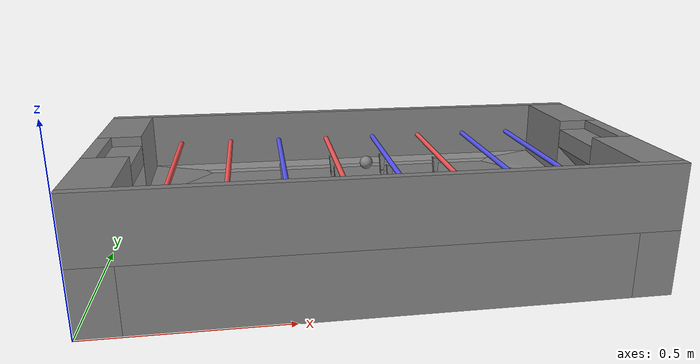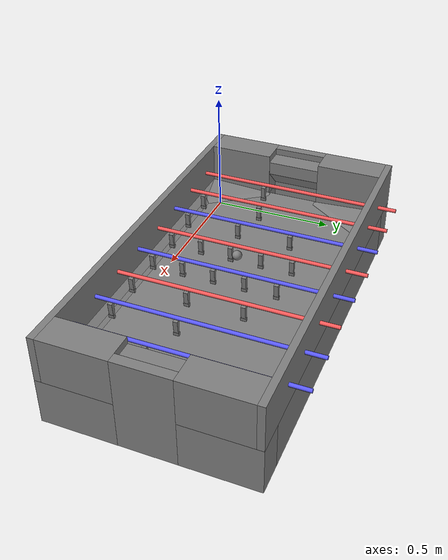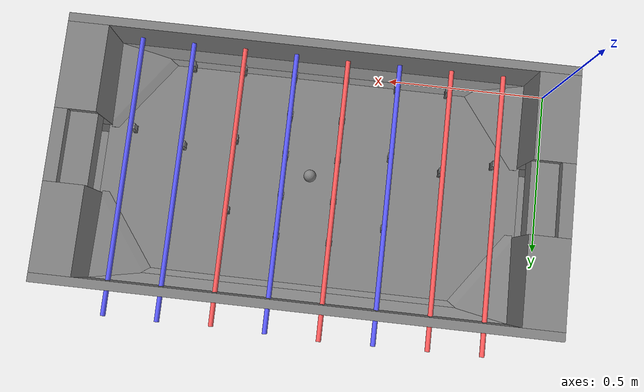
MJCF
<mujoco model="FuzbAI Simulation">
    <asset>
        <material name="rod_red" rgba="1 0.35 0.35 1"/>
        <material name="rod_blue" rgba="0.35 0.35 1 1"/>
        <mesh file="wedge_bottom1.stl" scale="0.001 0.001 0.001"/>
        <mesh file="wedge_bottom2.stl" scale="0.001 0.001 0.001"/>
        <mesh file="wedge_upper1.stl" scale="0.001 0.001 0.001"/>
        <mesh file="wedge_upper2.stl" scale="0.001 0.001 0.001"/>
        <mesh file="ld_bump.stl" scale="0.001 0.001 0.001"/>
        <mesh file="rd_bump.stl" scale="0.001 0.001 0.001"/>
        <mesh file="lu_bump.stl" scale="0.001 0.001 0.001"/>
        <mesh file="ru_bump.stl" scale="0.001 0.001 0.001"/>
        <mesh file="igralec_zgoraj.stl" scale="0.001 0.001 0.001"/>
        <mesh file="igralec_spodaj.stl" scale="0.001 0.001 0.001"/>
    </asset>

    <visual>
        <scale framelength="0.2" framewidth="0.01" actuatorwidth="0.02" jointwidth="0.01"/>

        <!-- OpenGL buffer size (4K UHD, 16:9) -->
        <global offwidth="3840" offheight="2160"/>
    </visual>

    <option integrator="implicitfast" cone="elliptic"/>

    <!-- Override memory for contacts to reduce space -->
    <size memory="1M"/>

    <!-- Default classes for repeated geoms -->
    <default>
        <default class="rod_geom">
            <geom type="cylinder" size="0.007 0.40" pos="0 0.40 0" mass="0.9667308913626517" euler="90 0 0" contype="0" conaffinity="0"/>
        </default>
        <default class="player_upper">
            <geom type="mesh" mesh="igralec_zgoraj" mass="0.139539" solref="0.004 1" friction="0.5 0 0"/>
        </default>
        <default class="player_lower">
            <geom type="mesh" mesh="igralec_spodaj" mass="0.06976927" solref="0.004 1" friction="0.5 0 0"/>
        </default>
    </default>

    <!-- Aktuatorji palic -->
    <actuator>
        <motor name="p1_slide_ctrl" joint="p1_slide"/>  <!-- Goalkeeper R -->
        <motor name="p2_slide_ctrl" joint="p2_slide"/> <!-- Defense R -->
        <motor name="p3_slide_ctrl" joint="p3_slide"/>  <!-- Attack B -->
        <motor name="p4_slide_ctrl" joint="p4_slide"/> <!-- Offense R -->
        <motor name="p5_slide_ctrl" joint="p5_slide"/> <!-- Offense B -->
        <motor name="p6_slide_ctrl" joint="p6_slide"/>  <!-- Attack R -->
        <motor name="p7_slide_ctrl" joint="p7_slide"/> <!-- Defense B -->
        <motor name="p8_slide_ctrl" joint="p8_slide"/>  <!-- Goalkeeper B -->
        <motor name="p1_revolute_ctrl" joint="p1_revolute"/> <!-- Goalkeeper R -->
        <motor name="p2_revolute_ctrl" joint="p2_revolute"/> <!-- Defense R -->
        <motor name="p3_revolute_ctrl" joint="p3_revolute"/> <!-- Attack B -->
        <motor name="p4_revolute_ctrl" joint="p4_revolute"/> <!-- Offense R -->
        <motor name="p5_revolute_ctrl" joint="p5_revolute"/> <!-- Offense B -->
        <motor name="p6_revolute_ctrl" joint="p6_revolute"/> <!-- Attack R -->
        <motor name="p7_revolute_ctrl" joint="p7_revolute"/> <!-- Defense B -->
        <motor name="p8_revolute_ctrl" joint="p8_revolute"/> <!-- Goalkeeper  -->

        <!-- Dušenje žogice za namene raznolikosti žogic med epizodami -->
        <damper name="ball_damp_x" kv="0.05" joint="ball" ctrlrange="0 0.3" gear="1 0 0 0 0 0"/>
        <damper name="ball_damp_y" kv="0.05" joint="ball" ctrlrange="0 0.3" gear="0 1 0 0 0 0"/>
    </actuator>

    <!-- Izklop stikov med mizo in palicam -->
    <contact>
        <exclude body1="miza" body2="rod1"/>
        <exclude body1="miza" body2="rod2"/>
        <exclude body1="miza" body2="rod3"/>
        <exclude body1="miza" body2="rod4"/>
        <exclude body1="miza" body2="rod5"/>
        <exclude body1="miza" body2="rod6"/>
        <exclude body1="miza" body2="rod7"/>
        <exclude body1="miza" body2="rod8"/>
    </contact>

    <worldbody>
        <!-- Red goalkeeper's camera - demonstrational purposes -->
        <camera name="cam_red_g" pos="0.387 0.398 0.190" xyaxes="-0.023 1.000 0.000 0 0 0.996"/>

        <!-- Top closeup camera - demonstrational purposes -->
        <camera name="cam_top_closeup" pos="0.720 0.358 1.228" xyaxes="1.000 0.0 0.000 0.0 1.000 0.017"/>

        <!-- Blue front camera - demonstrational purposes -->
        <camera name="cam_blue_front" pos="1.5 0.376 0.911" xyaxes="0.000 1.000 0.000 -1.5 0.000 1"/>

        <!-- Blue side-front camera - demonstrational purposes of attacker -->
        <camera name="cam_blue_side_front" pos="1.341 0.701 0.584" xyaxes="-0.793 0.609 0.000 -0.430 -0.561 0.707"/>

        <!-- red side-front camera - demonstrational purposes of goalkeeper and defense -->
        <camera name="cam_red_side_front" pos="0.604 0.892 0.682" xyaxes="-0.996 0.087 -0.000 -0.064 -0.734 0.676"/>

        <!-- Top camera - competition visualization -->
        <camera name="cam_top" pos="0.713 -0.056 2.043" xyaxes="1.000 0 0.000 0.000 1.000 0.225"/>

        <!-- Vizualizacija koordinatnih sistemov -->
        <site name="frame_red" pos="0.115 0.727 0.174" euler="180 0 0"/>
        <site name="frame_blue" pos="1.322 0.025 0.174" euler="180 0 180"/>

        <!-- Miza -->
        <body name="miza" pos="0 0 0.174">
            <!-- Glavna podlaga -->
            <geom type="box" size="0.6115 0.376 0.087" pos="0.7185 0.376 -0.087" solref="0.004 1" friction="0 0 0"/>

            <!-- Goal levo-spodaj -->
            <geom type="box" size="0.0535 0.13675 0.087" pos="0.0535 0.13675 -0.087" solref="0.004 1"/>
            <geom type="box" size="0.0577415 0.12425 0.0855" pos="0.057752500000000005 0.14925 0.0855" friction="0 0 0" solref="0.02 0.25"/>

            <!-- Goal levo-zgoraj -->
            <geom type="box" size="0.0535 0.13675 0.087" pos="0.0535 0.61525 -0.087" solref="0.004 1"/>
            <geom type="box" size="0.0577415 0.12425 0.0855" pos="0.057752500000000005 0.60275 0.0855" friction="0 0 0" solref="0.02 0.25"/>

            <!-- Goal levo-zadaj -->
            <geom name="left-goal-back" type="box" size="0.0185 0.1025 0.1725" pos="0.0185 0.376 -0.0015" solref="0.004 1"/>

            <!-- Goal levo-zadaj-odboj -->
            <geom type="box" size="0.010 0.1025 0.07" pos="0.057 0.376 0.050" euler="0 45 0" solref="0.004 1"/>

            <!-- Goal levo-luknja-spodaj -->
            <geom name="left-goal-hole" type="box" size="0.035 0.1025 0.025" pos="0.072 0.376 -0.149" solref="0.004 1"/>

            <!-- Goal levo-precka -->
            <geom type="box" size="0.039 0.105 0.025875" pos="0.076 0.376 0.11925" solref="0.02 0.25"/>

            <!-- Goal desno-spodaj -->
            <geom type="box" size="0.0535 0.13675 0.087" pos="1.3835 0.13675 -0.087" solref="0.004 1"/>
            <geom type="box" size="0.0577415 0.12425 0.0855" pos="1.3792585000000002 0.14925 0.0855" friction="0 0 0" solref="0.02 0.25"/>

            <!-- Goal desno-zgoraj -->
            <geom type="box" size="0.0535 0.13675 0.087" pos="1.3835 0.61525 -0.087" solref="0.004 1"/>
            <geom type="box" size="0.0577415 0.12425 0.0855" pos="1.3792585000000002 0.60275 0.0855" friction="0 0 0" solref="0.02 0.25"/>

            <!-- Goal desno-zadaj -->
            <geom name="right-goal-back" type="box" size="0.0185 0.1025 0.1725" pos="1.4185 0.376 -0.0015" solref="0.004 1"/>
            <!-- Goal desno-zadaj-odboj -->
            <geom type="box" size="0.010 0.1025 0.07" pos="1.38 0.376 0.050" euler="0 -45 0" solref="0.004 1"/>

            <!-- Goal desno-luknja-spodaj -->
            <geom name="right-goal-hole" type="box" size="0.035 0.1025 0.025" pos="1.365 0.376 -0.149" solref="0.004 1"/>

            <!-- Goal desno-precka -->
            <geom type="box" size="0.039 0.105 0.025875" pos="1.361 0.376 0.11925" solref="0.02 0.25"/>

            <!-- Stena spodaj -->
            <geom type="box" size="0.7185 0.0125 0.0855" pos="0.7185 0.0125 0.0855" friction="0 0 0" solref="0.02 0.25"/>
            <!-- Stena zgoraj -->
            <geom type="box" size="0.7185 0.0125 0.0855" pos="0.7185 0.7395 0.0855" friction="0 0 0" solref="0.02 0.25"/>

            <!-- Stranska piramida spodaj -->
            <geom type="mesh" mesh="wedge_bottom1" pos="0 0 -0.174"/>
            <geom type="mesh" mesh="wedge_bottom2" pos="0 0 -0.174"/>

            <!-- Stranska piramida zgoraj -->
            <geom type="mesh" mesh="wedge_upper1" pos="0 0 -0.174"/>
            <geom type="mesh" mesh="wedge_upper2" pos="0 0 -0.174"/>

            <!-- Kotne klančine -->
            <geom type="mesh" mesh="ld_bump" pos="0 0 -0.174" friction="0 0 0"/>
            <geom type="mesh" mesh="rd_bump" pos="0 0 -0.174" friction="0 0 0"/>
            <geom type="mesh" mesh="lu_bump" pos="0 0 -0.174" friction="0 0 0"/>
            <geom type="mesh" mesh="ru_bump" pos="0 0 -0.174" friction="0 0 0"/>
        </body>

        <!-- Osvetlitev nad mizo -->
        <light pos="0.7185 0.376 1" dir="0 0 -1" exponent="5" cutoff="90"/>

        <!-- Palice -->
        <body name="rod1" pos="0.195 0.021 0.2595">
            <joint type="slide" name="p1_slide" axis="0 1 0" range="0 0.19"/>
            <joint type="hinge" name="p1_revolute" axis="0 1 0" range="-360 360"/>
            <geom class="rod_geom" material="rod_red"/>
            <geom class="player_upper" pos="0.0005 0.258 0" contype="1" conaffinity="0"/>
            <geom class="player_lower" pos="0.0005 0.258 0" contype="1" conaffinity="0"/>
        </body>

        <body name="rod2" pos="0.345 0.023 0.2595">
            <joint type="slide" name="p2_slide" axis="0 1 0" range="0 0.356"/>
            <joint type="hinge" name="p2_revolute" axis="0 1 0" range="-360 360"/>
            <geom class="rod_geom" material="rod_red"/>
            <geom class="player_upper" pos="0.0005 0.055 0" contype="2" conaffinity="0"/>
            <geom class="player_lower" pos="0.0005 0.055 0" contype="2" conaffinity="0"/>
            <geom class="player_upper" pos="0.0005 0.293 0" contype="2" conaffinity="0"/>
            <geom class="player_lower" pos="0.0005 0.293 0" contype="2" conaffinity="0"/>
        </body>

        <body name="rod3" pos="0.495 0.025 0.2595">
            <joint type="slide" name="p3_slide" axis="0 1 0" range="0 0.18"/>
            <joint type="hinge" name="p3_revolute" axis="0 1 0" range="-360 360"/>
            <geom class="rod_geom" material="rod_blue"/>
            <geom class="player_upper" pos="0.0005 0.055 0" contype="4" conaffinity="0"/>
            <geom class="player_lower" pos="0.0005 0.055 0" contype="4" conaffinity="0"/>
            <geom class="player_upper" pos="0.0005 0.263 0" contype="4" conaffinity="0"/>
            <geom class="player_lower" pos="0.0005 0.263 0" contype="4" conaffinity="0"/>
            <geom class="player_upper" pos="0.0005 0.471 0" contype="4" conaffinity="0"/>
            <geom class="player_lower" pos="0.0005 0.471 0" contype="4" conaffinity="0"/>
        </body>

        <body name="rod4" pos="0.645 0.029 0.2595">
            <joint type="slide" name="p4_slide" axis="0 1 0" range="0 0.116"/>
            <joint type="hinge" name="p4_revolute" axis="0 1 0" range="-360 360"/>
            <geom class="rod_geom" material="rod_red"/>
            <geom class="player_upper" pos="0.0005 0.055 0" contype="8" conaffinity="0"/>
            <geom class="player_lower" pos="0.0005 0.055 0" contype="8" conaffinity="0"/>
            <geom class="player_upper" pos="0.0005 0.173 0" contype="8" conaffinity="0"/>
            <geom class="player_lower" pos="0.0005 0.173 0" contype="8" conaffinity="0"/>
            <geom class="player_upper" pos="0.0005 0.291 0" contype="8" conaffinity="0"/>
            <geom class="player_lower" pos="0.0005 0.291 0" contype="8" conaffinity="0"/>
            <geom class="player_upper" pos="0.0005 0.409 0" contype="8" conaffinity="0"/>
            <geom class="player_lower" pos="0.0005 0.409 0" contype="8" conaffinity="0"/>
            <geom class="player_upper" pos="0.0005 0.527 0" contype="8" conaffinity="0"/>
            <geom class="player_lower" pos="0.0005 0.527 0" contype="8" conaffinity="0"/>
        </body>

        <body name="rod5" pos="0.795 0.025 0.2595">
            <joint type="slide" name="p5_slide" axis="0 1 0" range="0 0.116"/>
            <joint type="hinge" name="p5_revolute" axis="0 1 0" range="-360 360"/>
            <geom class="rod_geom" material="rod_blue"/>
            <geom class="player_upper" pos="0.0005 0.055 0" contype="16" conaffinity="0"/>
            <geom class="player_lower" pos="0.0005 0.055 0" contype="16" conaffinity="0"/>
            <geom class="player_upper" pos="0.0005 0.173 0" contype="16" conaffinity="0"/>
            <geom class="player_lower" pos="0.0005 0.173 0" contype="16" conaffinity="0"/>
            <geom class="player_upper" pos="0.0005 0.291 0" contype="16" conaffinity="0"/>
            <geom class="player_lower" pos="0.0005 0.291 0" contype="16" conaffinity="0"/>
            <geom class="player_upper" pos="0.0005 0.409 0" contype="16" conaffinity="0"/>
            <geom class="player_lower" pos="0.0005 0.409 0" contype="16" conaffinity="0"/>
            <geom class="player_upper" pos="0.0005 0.527 0" contype="16" conaffinity="0"/>
            <geom class="player_lower" pos="0.0005 0.527 0" contype="16" conaffinity="0"/>
        </body>

        <body name="rod6" pos="0.945 0.021 0.2595">
            <joint type="slide" name="p6_slide" axis="0 1 0" range="0 0.18"/>
            <joint type="hinge" name="p6_revolute" axis="0 1 0" range="-360 360"/>
            <geom class="rod_geom" material="rod_red"/>
            <geom class="player_upper" pos="0.0005 0.055 0" contype="32" conaffinity="0"/>
            <geom class="player_lower" pos="0.0005 0.055 0" contype="32" conaffinity="0"/>
            <geom class="player_upper" pos="0.0005 0.263 0" contype="32" conaffinity="0"/>
            <geom class="player_lower" pos="0.0005 0.263 0" contype="32" conaffinity="0"/>
            <geom class="player_upper" pos="0.0005 0.471 0" contype="32" conaffinity="0"/>
            <geom class="player_lower" pos="0.0005 0.471 0" contype="32" conaffinity="0"/>
        </body>

        <body name="rod7" pos="1.095 0.025 0.2595">
            <joint type="slide" name="p7_slide" axis="0 1 0" range="0 0.356"/>
            <joint type="hinge" name="p7_revolute" axis="0 1 0" range="-360 360"/>
            <geom class="rod_geom" material="rod_blue"/>
            <geom class="player_upper" pos="0.0005 0.055 0" contype="64" conaffinity="0"/>
            <geom class="player_lower" pos="0.0005 0.055 0" contype="64" conaffinity="0"/>
            <geom class="player_upper" pos="0.0005 0.293 0" contype="64" conaffinity="0"/>
            <geom class="player_lower" pos="0.0005 0.293 0" contype="64" conaffinity="0"/>
        </body>

        <body name="rod8" pos="1.245 0.025 0.2595">
            <joint type="slide" name="p8_slide" axis="0 1 0" range="0 0.19"/>
            <joint type="hinge" name="p8_revolute" axis="0 1 0" range="-360 360"/>
            <geom class="rod_geom" material="rod_blue"/>
            <geom class="player_upper" pos="0.0005 0.258 0" contype="128" conaffinity="0"/>
            <geom class="player_lower" pos="0.0005 0.258 0" contype="128" conaffinity="0"/>
        </body>

        <!-- Žogica -->
        <body name="ball" pos="0.7185 0.376 0.274">
            <geom name="ball" type="sphere" size="0.0175" mass="0.0287" solref="0.004 0.32" condim="6" friction="0.2 0.01 0.00005" conaffinity="255"/>
            <joint name="ball" type="free"/>
        </body>
    </worldbody>
</mujoco>
